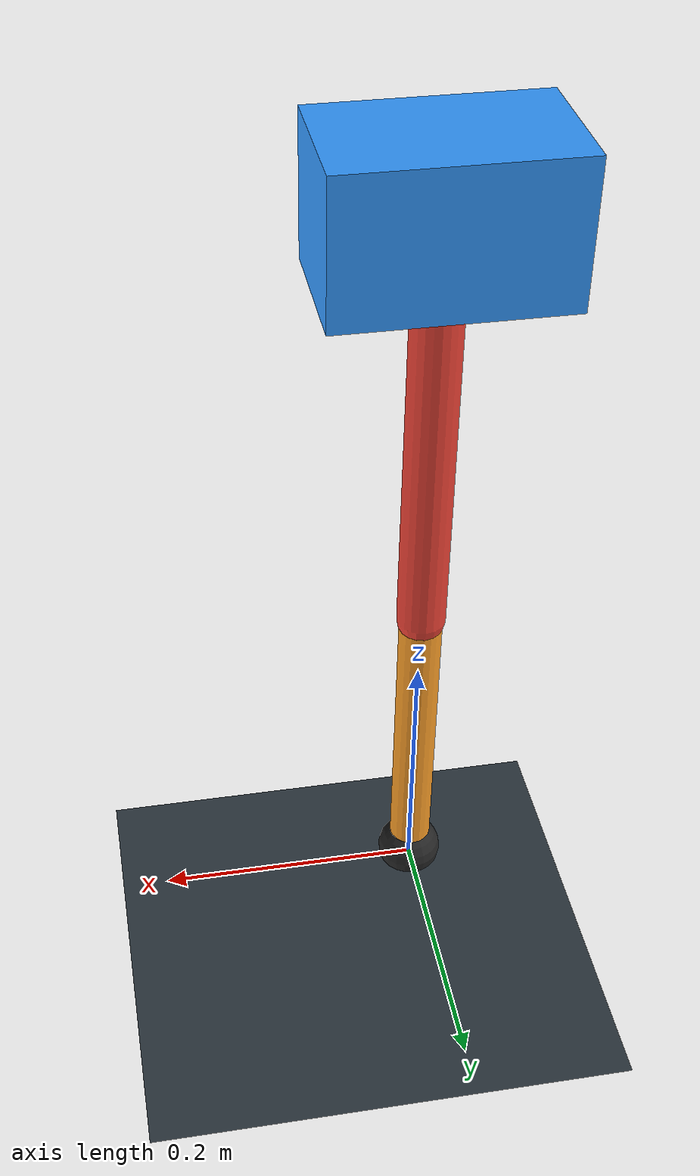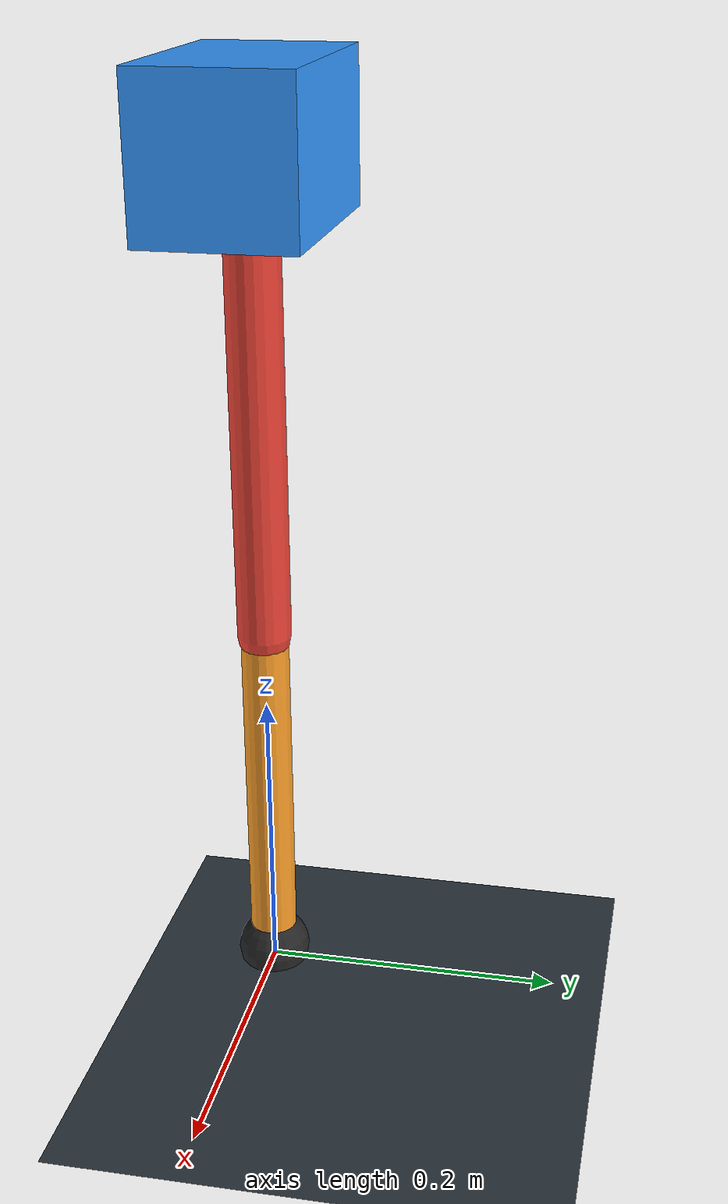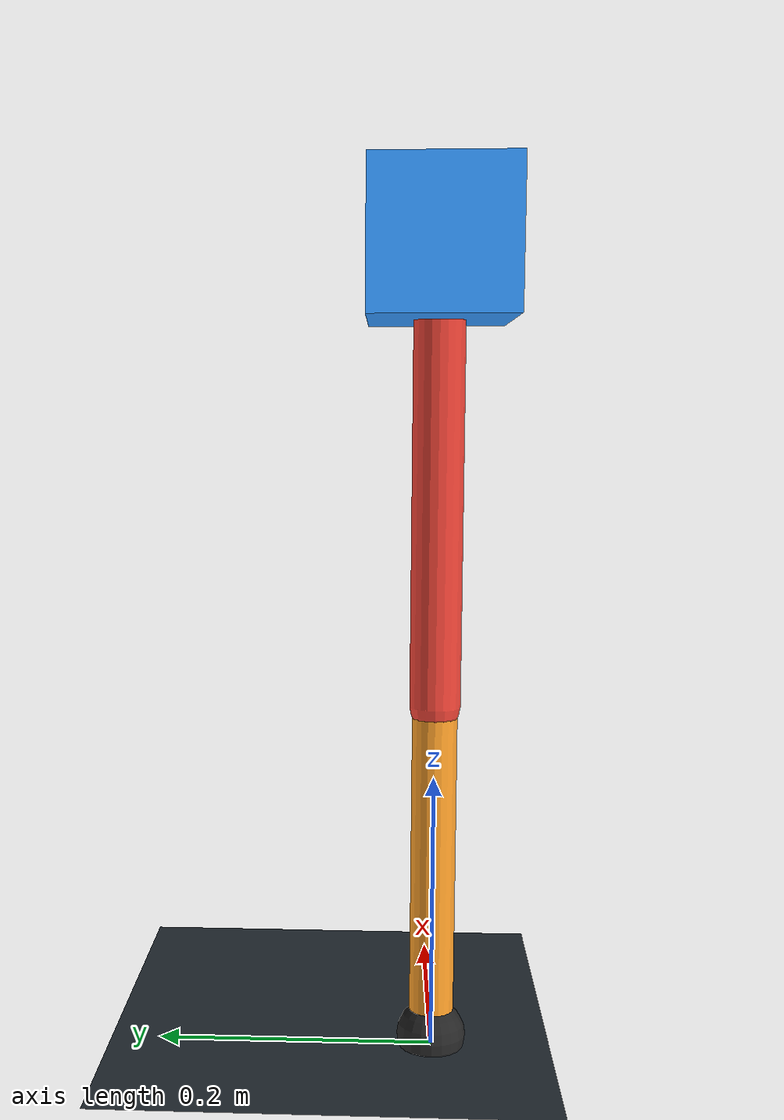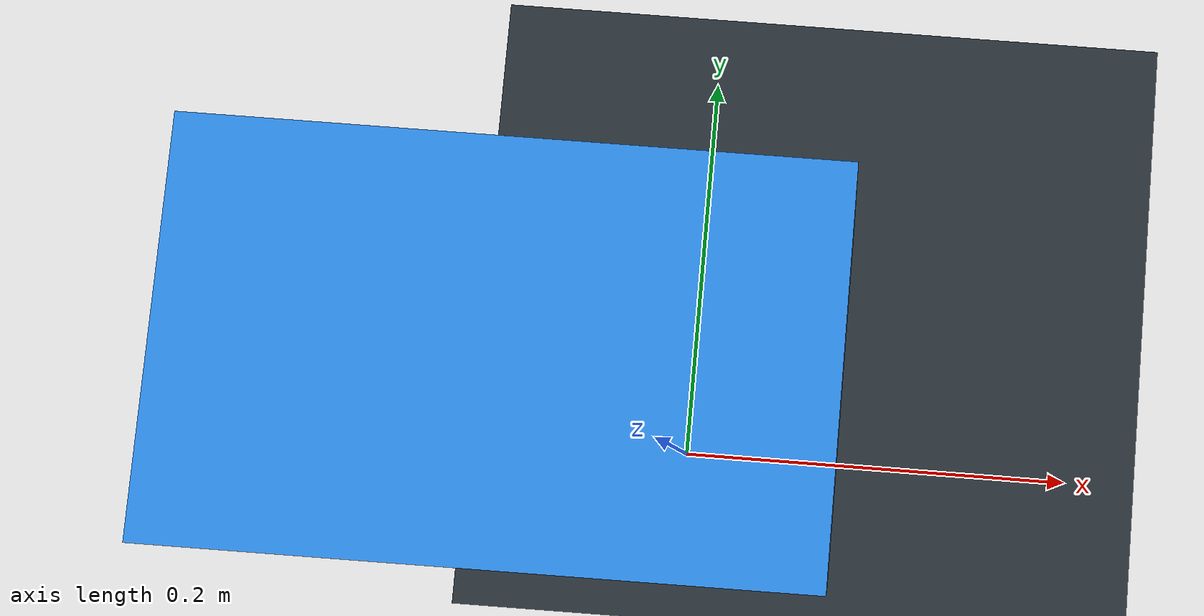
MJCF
<mujoco model="single_axis_two_bar">
  <compiler angle="radian" inertiafromgeom="true"/>
  <option timestep="0.001" integrator="implicitfast" gravity="0 0 -9.81"/>
  <default>
    <joint damping="0.08"/>
    <geom friction="1.2 0.01 0.0001" condim="3"/>
  </default>
  <worldbody>
    <geom name="floor" type="plane" size="5 5 0.1" rgba="0.18 0.22 0.25 1"/>
    <body name="carriage" pos="0 0 0.5726383688184317">
      <joint name="pole_slide" type="slide" axis="0 0 1"/>
      <geom name="payload" type="box" size="0.08 0.05 0.05" mass="2.810290228047986" rgba="0.2 0.6 1 1"/>
      <body name="thigh" pos="0 0 0">
        <joint name="hip" type="hinge" axis="0 1 0"/>
        <geom name="thigh_link" type="capsule" fromto="0 0 0 0 0 -0.3202398149040729" size="0.018" mass="0.2281750997149591" rgba="0.9 0.25 0.2 1"/>
        <body name="shank" pos="0 0 -0.3202398149040729">
          <joint name="knee" type="hinge" axis="0 1 0"/>
          <geom name="shank_link" type="capsule" fromto="0 0 0 0 0 -0.24433582305307316" size="0.016" mass="0.17409250253836103" rgba="0.95 0.6 0.15 1"/>
          <geom name="foot" type="sphere" pos="0 0 -0.24433582305307316" size="0.025" mass="0.03" rgba="0.15 0.15 0.15 1"/>
          <site name="toe" pos="0 0 -0.24433582305307316" size="0.008"/>
        </body>
      </body>
    </body>
  </worldbody>
  <actuator>
    <motor name="hip_motor" joint="hip" ctrlrange="-28.0750993918256 28.0750993918256"/>
    <motor name="knee_motor" joint="knee" ctrlrange="-101.1729787010276 101.1729787010276"/>
  </actuator>
</mujoco>
